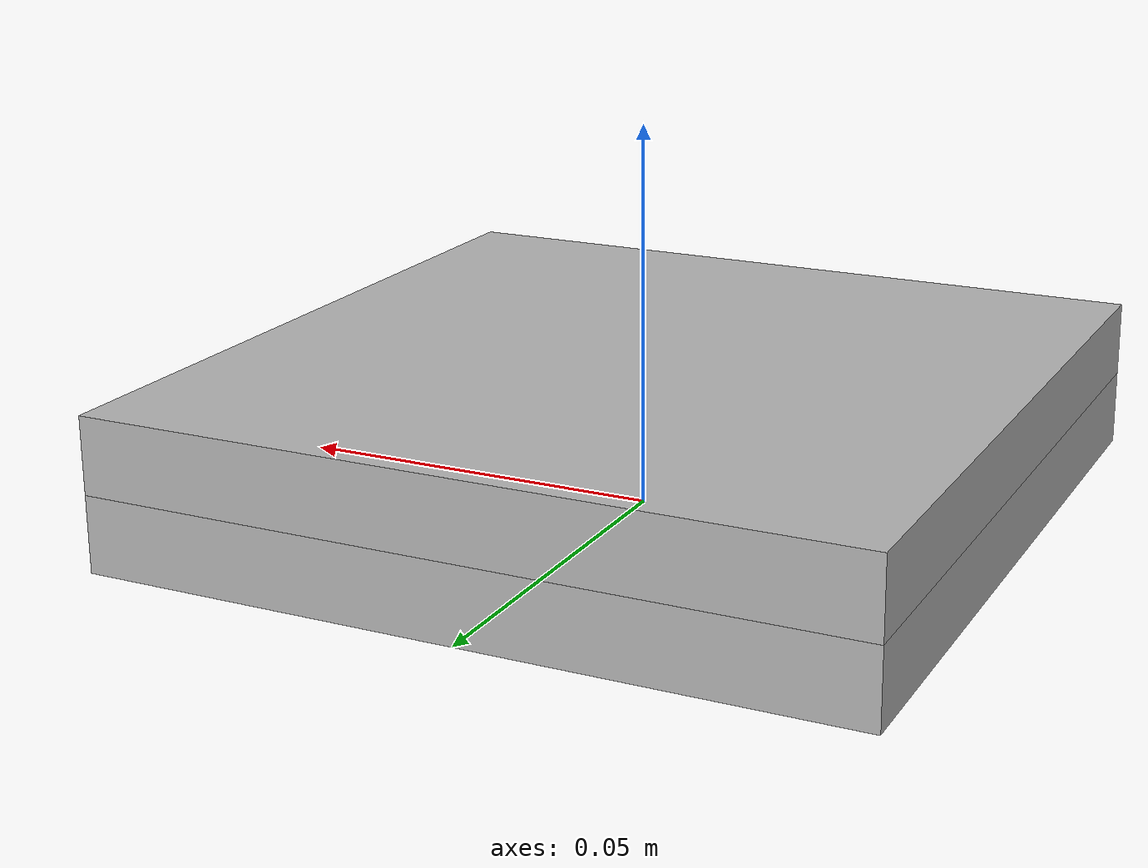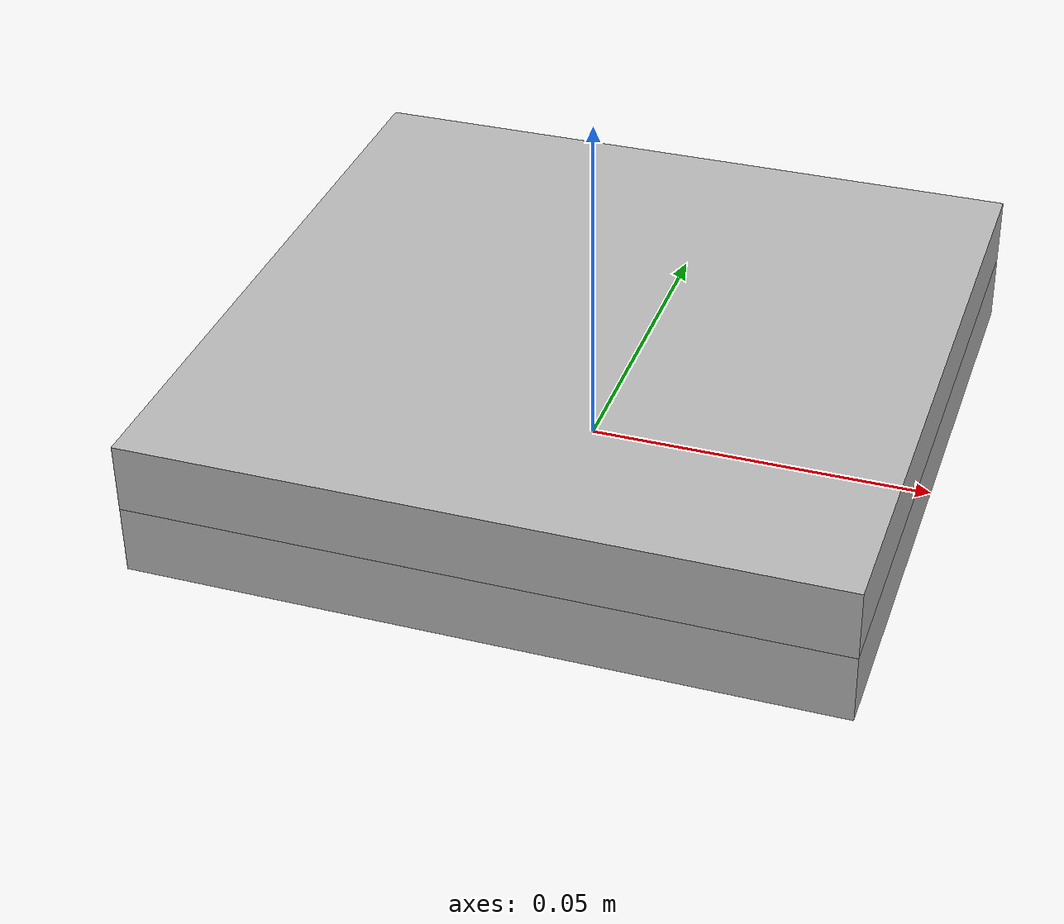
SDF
<?xml version='1.0'?>
<sdf version='1.6'>
		<model name="IJ">
			<self_collide>true</self_collide>
			<pose>0.0 0.0 0.0 0.0 0.0 0.0</pose>
			<!-- Start of parts of the pmodel IJ -->
			<!-- End of parts of the pmodel IJ -->

			<!-- Start of links of the pmodel IJ -->
			<!-- link full name is IJ::Bottom -->
			<link name="1-Bottom">
					<pose>0.0 0.0 0.004999999888241291 0.0 0.0 0.0</pose>
					<inertial>
						<pose>0.0 0.0 0.0 0.0 0.0 0.0</pose>
						<inertia>
							<ixx>1.0</ixx>
							<ixy>0.0</ixy>
							<ixz>0.0</ixz>
							<iyy>1.0</iyy>
							<iyz>0.0</iyz>
							<izz>1.0</izz>
						</inertia>
						<mass>1.0</mass>
					</inertial>
					<!-- body full name is IJ::Bottom::B -->
					<collision name="1--B">
						<laser_retro>0.0</laser_retro>
						<pose>0.0 0.0 0.0 0.0 0.0 0.0</pose>
						<geometry>
							<box>
								<size>0.10000000149011612 0.10000000149011612 0.009999999776482582</size>
							</box>
						</geometry>
						<surface>
							<bounce>
								<restitution_coefficient>0.0</restitution_coefficient>
								<threshold>100000.0</threshold>
							</bounce>
							<friction>
								<ode>
									<mu>1.0</mu>
									<mu2>1.0</mu2>
									<fdir1>0.0 0.0 0.0</fdir1>
									<slip1>0.0</slip1>
									<slip2>0.0</slip2>
								</ode>
								<torsional>
									<coefficient>1.0</coefficient>
									<surface_radius>0.0</surface_radius>
								</torsional>
							</friction>
						</surface>
					</collision>
					<visual name="1--B">
						<laser_retro>0.0</laser_retro>
						<pose>0.0 0.0 0.0 0.0 0.0 0.0</pose>
						<geometry>
							<box>
								<size>0.10000000149011612 0.10000000149011612 0.009999999776482582</size>
							</box>
						</geometry>
						<surface>
							<bounce>
								<restitution_coefficient>0.0</restitution_coefficient>
								<threshold>100000.0</threshold>
							</bounce>
							<friction>
								<ode>
									<mu>1.0</mu>
									<mu2>1.0</mu2>
									<fdir1>0.0 0.0 0.0</fdir1>
									<slip1>0.0</slip1>
									<slip2>0.0</slip2>
								</ode>
								<torsional>
									<coefficient>1.0</coefficient>
									<surface_radius>0.0</surface_radius>
								</torsional>
							</friction>
						</surface>
					</visual>
			</link>
			<!-- link full name is IJ::Top -->
			<link name="2-Top">
					<pose>0.0 0.0 0.014999999664723873 0.0 0.0 0.0</pose>
					<inertial>
						<pose>0.0 0.0 0.0 0.0 0.0 0.0</pose>
						<inertia>
							<ixx>1.0</ixx>
							<ixy>0.0</ixy>
							<ixz>0.0</ixz>
							<iyy>1.0</iyy>
							<iyz>0.0</iyz>
							<izz>1.0</izz>
						</inertia>
						<mass>1.0</mass>
					</inertial>
					<!-- body full name is IJ::Top::B -->
					<collision name="2--B">
						<laser_retro>0.0</laser_retro>
						<pose>0.0 0.0 0.0 0.0 0.0 0.0</pose>
						<geometry>
							<box>
								<size>0.10000000149011612 0.10000000149011612 0.009999999776482582</size>
							</box>
						</geometry>
						<surface>
							<bounce>
								<restitution_coefficient>0.0</restitution_coefficient>
								<threshold>100000.0</threshold>
							</bounce>
							<friction>
								<ode>
									<mu>1.0</mu>
									<mu2>1.0</mu2>
									<fdir1>0.0 0.0 0.0</fdir1>
									<slip1>0.0</slip1>
									<slip2>0.0</slip2>
								</ode>
								<torsional>
									<coefficient>1.0</coefficient>
									<surface_radius>0.0</surface_radius>
								</torsional>
							</friction>
						</surface>
					</collision>
					<visual name="2--B">
						<laser_retro>0.0</laser_retro>
						<pose>0.0 0.0 0.0 0.0 0.0 0.0</pose>
						<geometry>
							<box>
								<size>0.10000000149011612 0.10000000149011612 0.009999999776482582</size>
							</box>
						</geometry>
						<surface>
							<bounce>
								<restitution_coefficient>0.0</restitution_coefficient>
								<threshold>100000.0</threshold>
							</bounce>
							<friction>
								<ode>
									<mu>1.0</mu>
									<mu2>1.0</mu2>
									<fdir1>0.0 0.0 0.0</fdir1>
									<slip1>0.0</slip1>
									<slip2>0.0</slip2>
								</ode>
								<torsional>
									<coefficient>1.0</coefficient>
									<surface_radius>0.0</surface_radius>
								</torsional>
							</friction>
						</surface>
					</visual>
			</link>
			<!-- End of links of the pmodel IJ -->

			<!-- Start of joints of the pmodel IJ -->
			<!-- Full name of joint: IJ::Bottom::PJ::0 from IJ::Bottom to IJ::Top-->
			<joint name="3-PJ" type="prismatic">
				<pose>0.0 0.0 -0.004999999888241291 0.0 -0.0 0.0</pose>
				<parent>1-Bottom</parent>
				<child>2-Top</child>
				<!-- WARNING: The SDF generator relies on annotations of the joint 3-PJ to specify in SDF aspects of the joint that are
					 accounted for in the equations. -->
				<axis>
					<xyz>0 0 1</xyz>
				</axis>
			</joint>
			<!-- Full name of joint: IJ::Bottom::PJ::1 from IJ::Bottom to IJ::Top-->
			<joint name="4-PJ" type="prismatic">
				<pose>0.0 0.0 -0.004999999888241291 0.0 -0.0 0.0</pose>
				<parent>1-Bottom</parent>
				<child>2-Top</child>
				<!-- WARNING: The SDF generator relies on annotations of the joint 4-PJ to specify in SDF aspects of the joint that are
					 accounted for in the equations. -->
				<axis>
					<xyz>0 0 1</xyz>
				</axis>
			</joint>
			<!-- Full name of joint: IJ::Bottom::PJ::2 from IJ::Bottom to IJ::Top-->
			<joint name="5-PJ" type="prismatic">
				<pose>0.0 0.0 -0.004999999888241291 0.0 -0.0 0.0</pose>
				<parent>1-Bottom</parent>
				<child>2-Top</child>
				<!-- WARNING: The SDF generator relies on annotations of the joint 5-PJ to specify in SDF aspects of the joint that are
					 accounted for in the equations. -->
				<axis>
					<xyz>0 0 1</xyz>
				</axis>
			</joint>
			<!-- Full name of joint: IJ::Bottom::PJ::3 from IJ::Bottom to IJ::Top-->
			<joint name="6-PJ" type="prismatic">
				<pose>0.0 0.0 -0.004999999888241291 0.0 -0.0 0.0</pose>
				<parent>1-Bottom</parent>
				<child>2-Top</child>
				<!-- WARNING: The SDF generator relies on annotations of the joint 6-PJ to specify in SDF aspects of the joint that are
					 accounted for in the equations. -->
				<axis>
					<xyz>0 0 1</xyz>
				</axis>
			</joint>
			<!-- End of joints of the pmodel IJ -->

			<!-- Start of fixed connections of the pmodel IJ -->
			<!-- End of fixed connections of the pmodel IJ -->
		</model>
</sdf>
